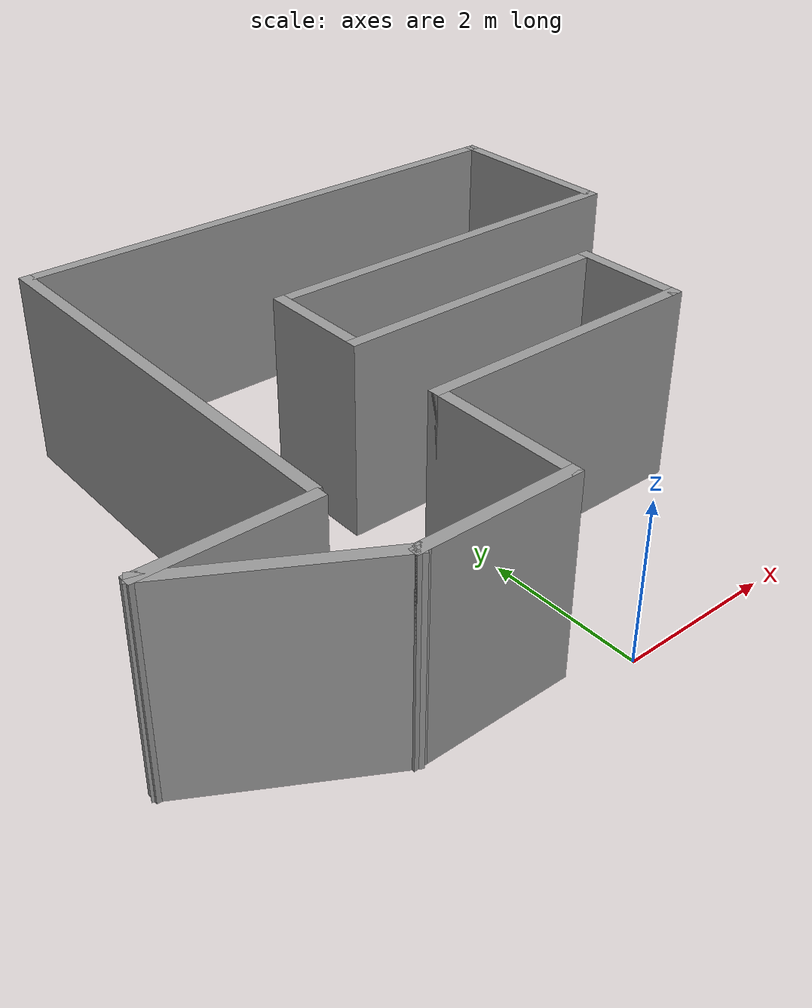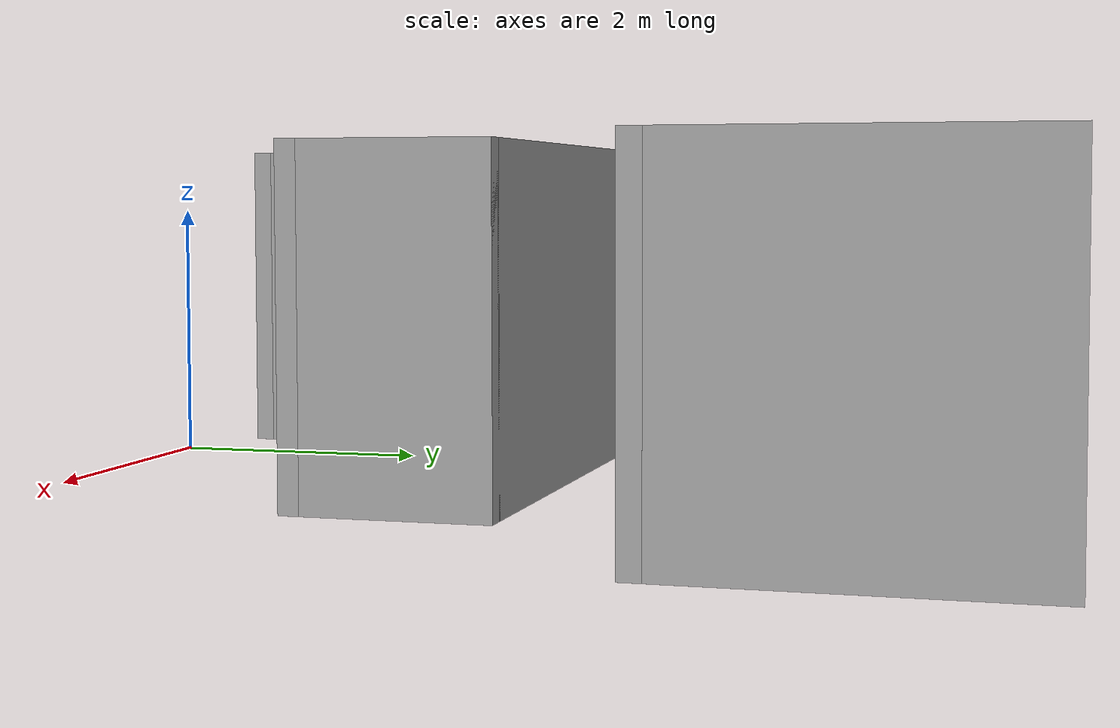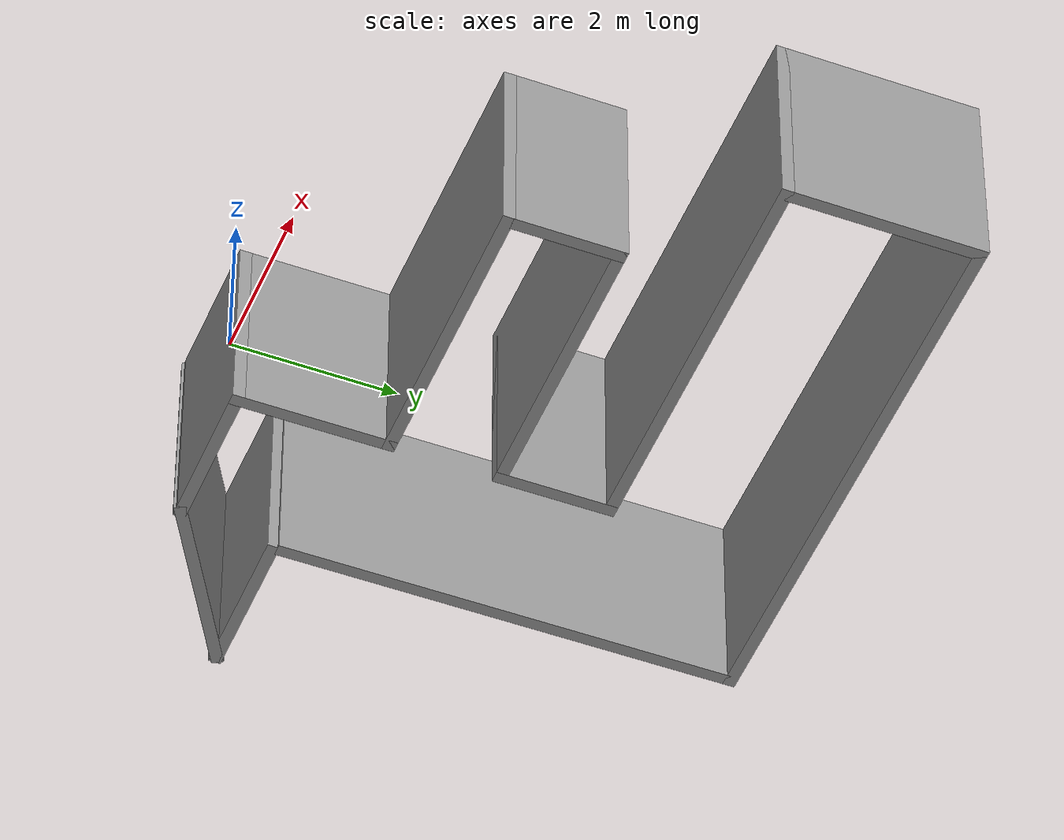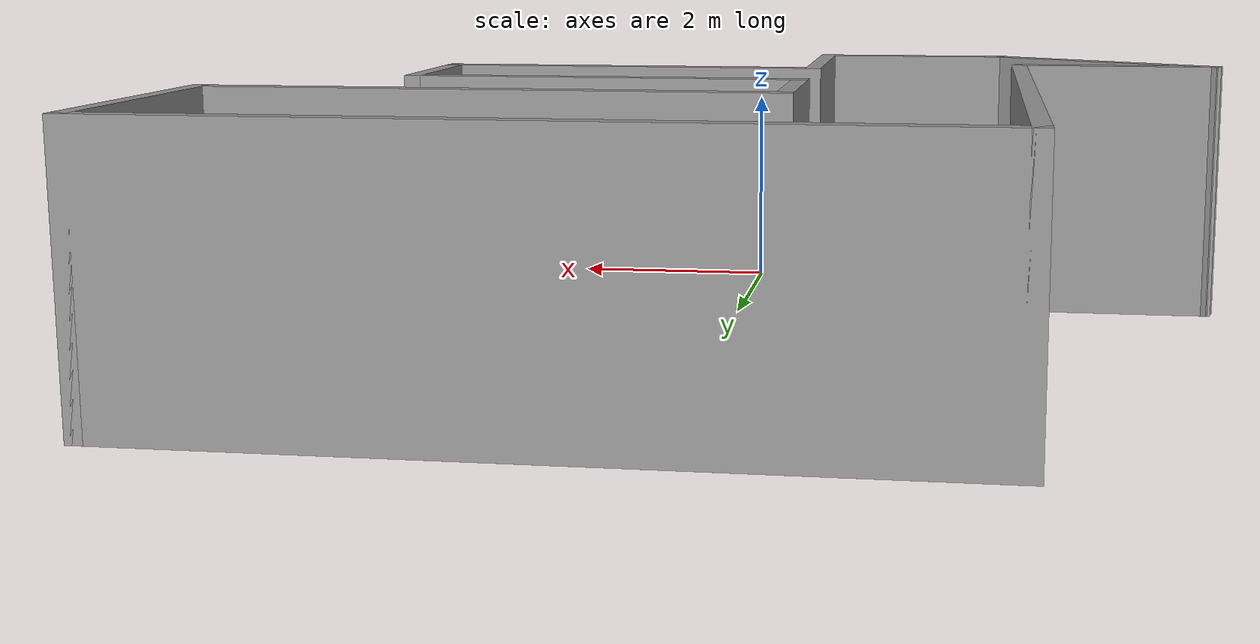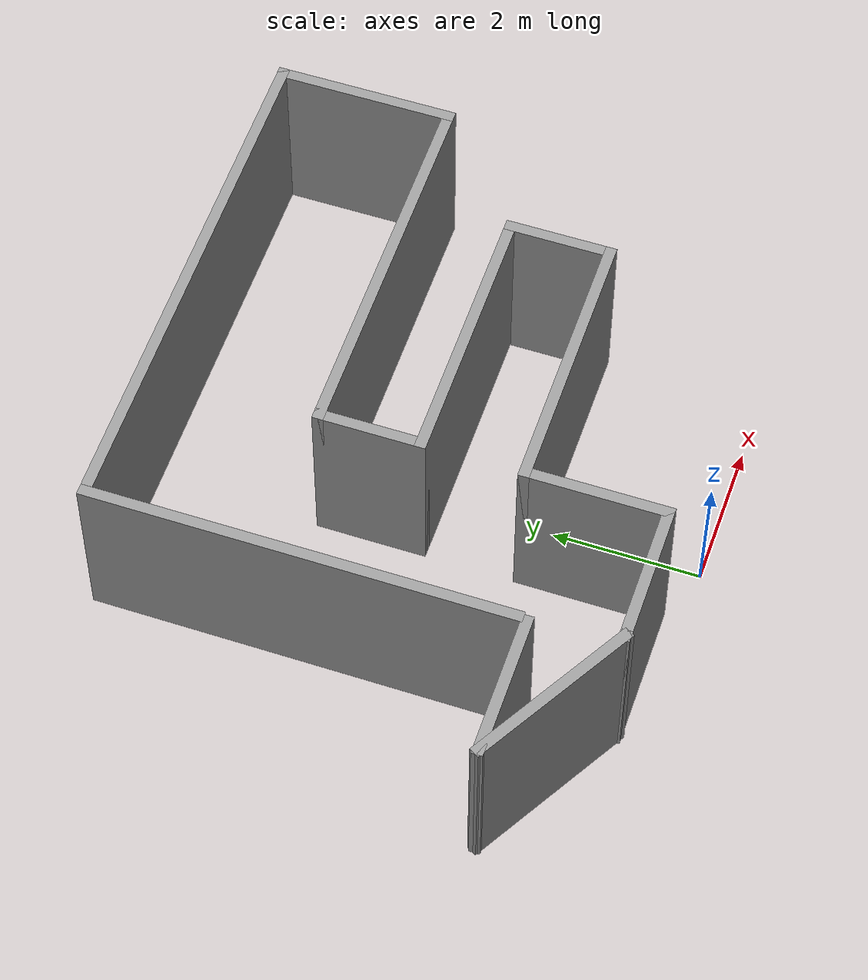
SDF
<?xml version='1.0'?>
<sdf version='1.7'>
  <model name='room'>
    <pose>-0.176306 3.6675 0 0 -0 0</pose>
    <link name='Wall_0'>
      <collision name='Wall_0_Collision'>
        <geometry>
          <box>
            <size>5.75 0.15 2.5</size>
          </box>
        </geometry>
        <pose>0 0 1.25 0 -0 0</pose>
      </collision>
      <visual name='Wall_0_Visual'>
        <pose>0 0 1.25 0 -0 0</pose>
        <geometry>
          <box>
            <size>5.75 0.15 2.5</size>
          </box>
        </geometry>
        <material>
          <script>
            <uri>file://media/materials/scripts/gazebo.material</uri>
            <name>Gazebo/Grey</name>
          </script>
          <ambient>1 1 1 1</ambient>
        </material>
        <meta>
          <layer>0</layer>
        </meta>
      </visual>
      <pose>-2.59369 0.7925 0 0 -0 1.5708</pose>
    </link>
    <link name='Wall_1'>
      <collision name='Wall_1_Collision'>
        <geometry>
          <box>
            <size>7.25 0.15 2.5</size>
          </box>
        </geometry>
        <pose>0 0 1.25 0 -0 0</pose>
      </collision>
      <visual name='Wall_1_Visual'>
        <pose>0 0 1.25 0 -0 0</pose>
        <geometry>
          <box>
            <size>7.25 0.15 2.5</size>
          </box>
        </geometry>
        <material>
          <script>
            <uri>file://media/materials/scripts/gazebo.material</uri>
            <name>Gazebo/Grey</name>
          </script>
          <ambient>1 1 1 1</ambient>
        </material>
        <meta>
          <layer>0</layer>
        </meta>
      </visual>
      <pose>0.956306 3.5925 0 0 -0 0</pose>
    </link>
    <link name='Wall_10'>
      <collision name='Wall_10_Collision'>
        <geometry>
          <box>
            <size>0.15 0.15 2.5</size>
          </box>
        </geometry>
        <pose>0 0 1.25 0 -0 0</pose>
      </collision>
      <visual name='Wall_10_Visual'>
        <pose>0 0 1.25 0 -0 0</pose>
        <geometry>
          <box>
            <size>0.15 0.15 2.5</size>
          </box>
        </geometry>
        <material>
          <script>
            <uri>file://media/materials/scripts/gazebo.material</uri>
            <name>Gazebo/Grey</name>
          </script>
          <ambient>1 1 1 1</ambient>
        </material>
        <meta>
          <layer>0</layer>
        </meta>
      </visual>
      <pose>-2.44369 -3.3075 0 0 -0 0</pose>
    </link>
    <link name='Wall_11'>
      <collision name='Wall_11_Collision'>
        <geometry>
          <box>
            <size>2.5 0.15 2.5</size>
          </box>
        </geometry>
        <pose>0 0 1.25 0 -0 0</pose>
      </collision>
      <visual name='Wall_11_Visual'>
        <pose>0 0 1.25 0 -0 0</pose>
        <geometry>
          <box>
            <size>2.5 0.15 2.5</size>
          </box>
        </geometry>
        <material>
          <script>
            <uri>file://media/materials/scripts/gazebo.material</uri>
            <name>Gazebo/Grey</name>
          </script>
          <ambient>1 1 1 1</ambient>
        </material>
        <meta>
          <layer>0</layer>
        </meta>
      </visual>
      <pose>-3.46127 -2.72 0 0 -0 2.61799</pose>
    </link>
    <link name='Wall_12'>
      <collision name='Wall_12_Collision'>
        <geometry>
          <box>
            <size>2 0.15 2.5</size>
          </box>
        </geometry>
        <pose>0 0 1.25 0 -0 0</pose>
      </collision>
      <visual name='Wall_12_Visual'>
        <pose>0 0 1.25 0 -0 0</pose>
        <geometry>
          <box>
            <size>2 0.15 2.5</size>
          </box>
        </geometry>
        <material>
          <script>
            <uri>file://media/materials/scripts/gazebo.material</uri>
            <name>Gazebo/Grey</name>
          </script>
          <ambient>1 1 1 1</ambient>
        </material>
        <meta>
          <layer>0</layer>
        </meta>
      </visual>
      <pose>-3.55385 -2.1325 0 0 -0 0</pose>
    </link>
    <link name='Wall_2'>
      <collision name='Wall_2_Collision'>
        <geometry>
          <box>
            <size>2.5 0.15 2.5</size>
          </box>
        </geometry>
        <pose>0 0 1.25 0 -0 0</pose>
      </collision>
      <visual name='Wall_2_Visual'>
        <pose>0 0 1.25 0 -0 0</pose>
        <geometry>
          <box>
            <size>2.5 0.15 2.5</size>
          </box>
        </geometry>
        <material>
          <script>
            <uri>file://media/materials/scripts/gazebo.material</uri>
            <name>Gazebo/Grey</name>
          </script>
          <ambient>1 1 1 1</ambient>
        </material>
        <meta>
          <layer>0</layer>
        </meta>
      </visual>
      <pose>4.50631 2.4175 0 0 -0 -1.5708</pose>
    </link>
    <link name='Wall_3'>
      <collision name='Wall_3_Collision'>
        <geometry>
          <box>
            <size>5.25 0.15 2.5</size>
          </box>
        </geometry>
        <pose>0 0 1.25 0 -0 0</pose>
      </collision>
      <visual name='Wall_3_Visual'>
        <pose>0 0 1.25 0 -0 0</pose>
        <geometry>
          <box>
            <size>5.25 0.15 2.5</size>
          </box>
        </geometry>
        <material>
          <script>
            <uri>file://media/materials/scripts/gazebo.material</uri>
            <name>Gazebo/Grey</name>
          </script>
          <ambient>1 1 1 1</ambient>
        </material>
        <meta>
          <layer>0</layer>
        </meta>
      </visual>
      <pose>1.95631 1.2425 0 0 -0 3.14159</pose>
    </link>
    <link name='Wall_4'>
      <collision name='Wall_4_Collision'>
        <geometry>
          <box>
            <size>1.5 0.15 2.5</size>
          </box>
        </geometry>
        <pose>0 0 1.25 0 -0 0</pose>
      </collision>
      <visual name='Wall_4_Visual'>
        <pose>0 0 1.25 0 -0 0</pose>
        <geometry>
          <box>
            <size>1.5 0.15 2.5</size>
          </box>
        </geometry>
        <material>
          <script>
            <uri>file://media/materials/scripts/gazebo.material</uri>
            <name>Gazebo/Grey</name>
          </script>
          <ambient>1 1 1 1</ambient>
        </material>
        <meta>
          <layer>0</layer>
        </meta>
      </visual>
      <pose>-0.593694 0.5675 0 0 -0 -1.5708</pose>
    </link>
    <link name='Wall_5'>
      <collision name='Wall_5_Collision'>
        <geometry>
          <box>
            <size>3.75 0.15 2.5</size>
          </box>
        </geometry>
        <pose>0 0 1.25 0 -0 0</pose>
      </collision>
      <visual name='Wall_5_Visual'>
        <pose>0 0 1.25 0 -0 0</pose>
        <geometry>
          <box>
            <size>3.75 0.15 2.5</size>
          </box>
        </geometry>
        <material>
          <script>
            <uri>file://media/materials/scripts/gazebo.material</uri>
            <name>Gazebo/Grey</name>
          </script>
          <ambient>1 1 1 1</ambient>
        </material>
        <meta>
          <layer>0</layer>
        </meta>
      </visual>
      <pose>1.20631 -0.1075 0 0 -0 0</pose>
    </link>
    <link name='Wall_6'>
      <collision name='Wall_6_Collision'>
        <geometry>
          <box>
            <size>1.5 0.15 2.5</size>
          </box>
        </geometry>
        <pose>0 0 1.25 0 -0 0</pose>
      </collision>
      <visual name='Wall_6_Visual'>
        <pose>0 0 1.25 0 -0 0</pose>
        <geometry>
          <box>
            <size>1.5 0.15 2.5</size>
          </box>
        </geometry>
        <material>
          <script>
            <uri>file://media/materials/scripts/gazebo.material</uri>
            <name>Gazebo/Grey</name>
          </script>
          <ambient>1 1 1 1</ambient>
        </material>
        <meta>
          <layer>0</layer>
        </meta>
      </visual>
      <pose>3.00631 -0.7825 0 0 -0 -1.5708</pose>
    </link>
    <link name='Wall_7'>
      <collision name='Wall_7_Collision'>
        <geometry>
          <box>
            <size>3.75 0.15 2.5</size>
          </box>
        </geometry>
        <pose>0 0 1.25 0 -0 0</pose>
      </collision>
      <visual name='Wall_7_Visual'>
        <pose>0 0 1.25 0 -0 0</pose>
        <geometry>
          <box>
            <size>3.75 0.15 2.5</size>
          </box>
        </geometry>
        <material>
          <script>
            <uri>file://media/materials/scripts/gazebo.material</uri>
            <name>Gazebo/Grey</name>
          </script>
          <ambient>1 1 1 1</ambient>
        </material>
        <meta>
          <layer>0</layer>
        </meta>
      </visual>
      <pose>1.20631 -1.4575 0 0 -0 3.14159</pose>
    </link>
    <link name='Wall_8'>
      <collision name='Wall_8_Collision'>
        <geometry>
          <box>
            <size>2 0.15 2.5</size>
          </box>
        </geometry>
        <pose>0 0 1.25 0 -0 0</pose>
      </collision>
      <visual name='Wall_8_Visual'>
        <pose>0 0 1.25 0 -0 0</pose>
        <geometry>
          <box>
            <size>2 0.15 2.5</size>
          </box>
        </geometry>
        <material>
          <script>
            <uri>file://media/materials/scripts/gazebo.material</uri>
            <name>Gazebo/Grey</name>
          </script>
          <ambient>1 1 1 1</ambient>
        </material>
        <meta>
          <layer>0</layer>
        </meta>
      </visual>
      <pose>-0.593694 -2.3825 0 0 -0 -1.5708</pose>
    </link>
    <link name='Wall_9'>
      <collision name='Wall_9_Collision'>
        <geometry>
          <box>
            <size>2 0.15 2.5</size>
          </box>
        </geometry>
        <pose>0 0 1.25 0 -0 0</pose>
      </collision>
      <visual name='Wall_9_Visual'>
        <pose>0 0 1.25 0 -0 0</pose>
        <geometry>
          <box>
            <size>2 0.15 2.5</size>
          </box>
        </geometry>
        <material>
          <script>
            <uri>file://media/materials/scripts/gazebo.material</uri>
            <name>Gazebo/Grey</name>
          </script>
          <ambient>1 1 1 1</ambient>
        </material>
        <meta>
          <layer>0</layer>
        </meta>
      </visual>
      <pose>-1.51869 -3.3075 0 0 -0 3.14159</pose>
    </link>
    <static>1</static>
  </model>
</sdf>
